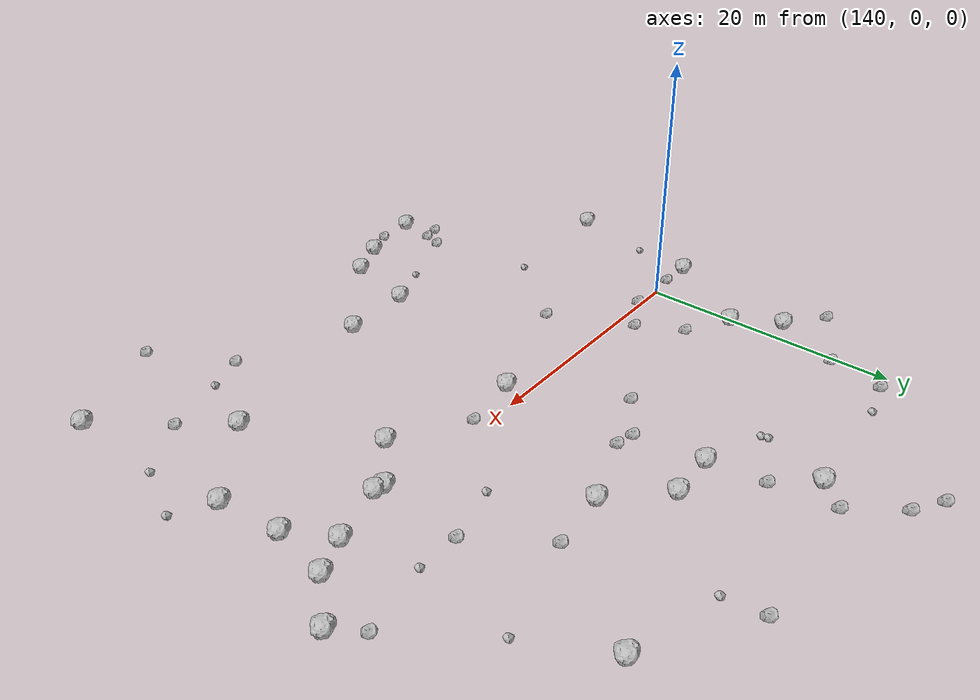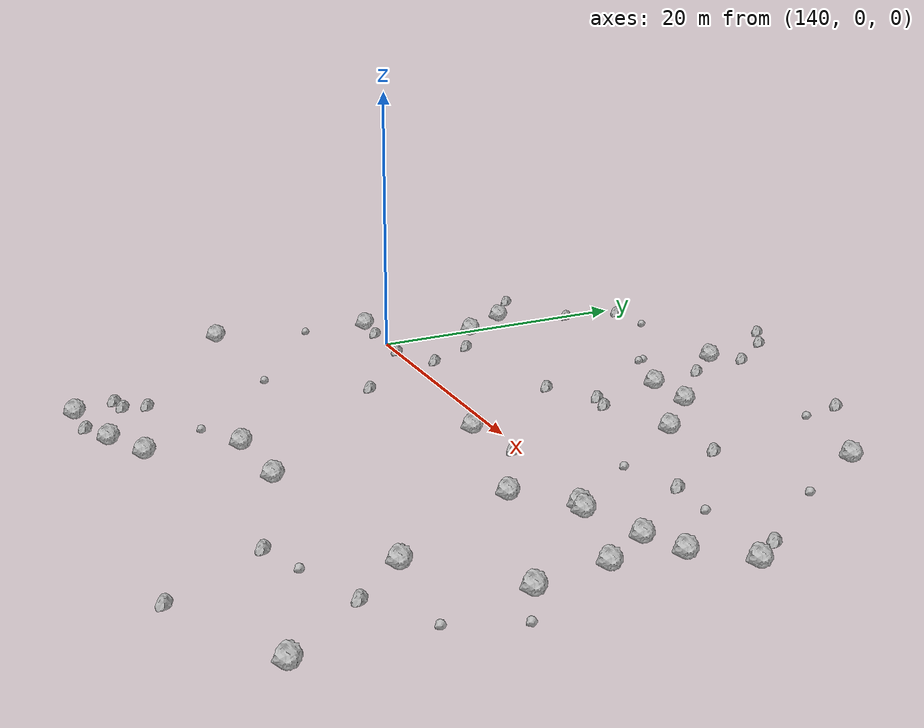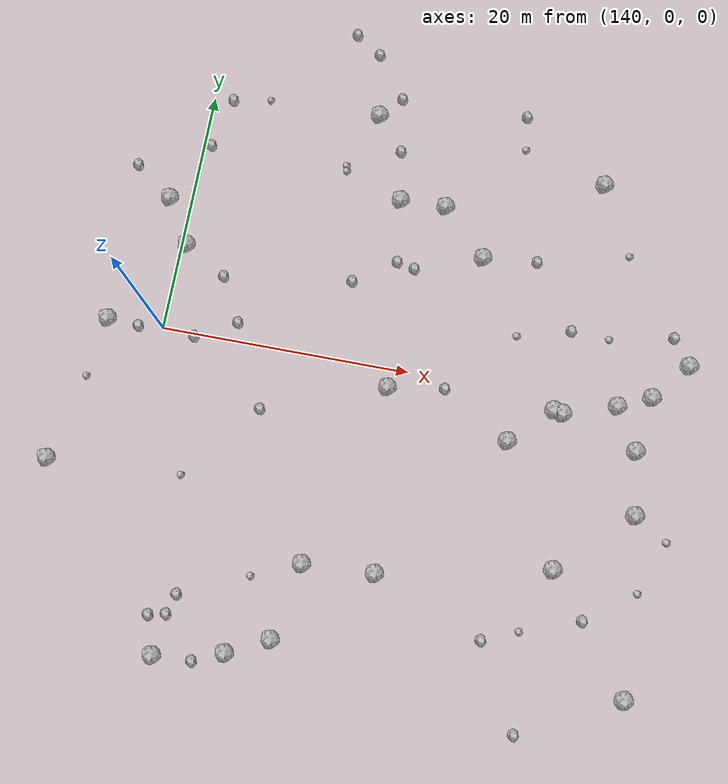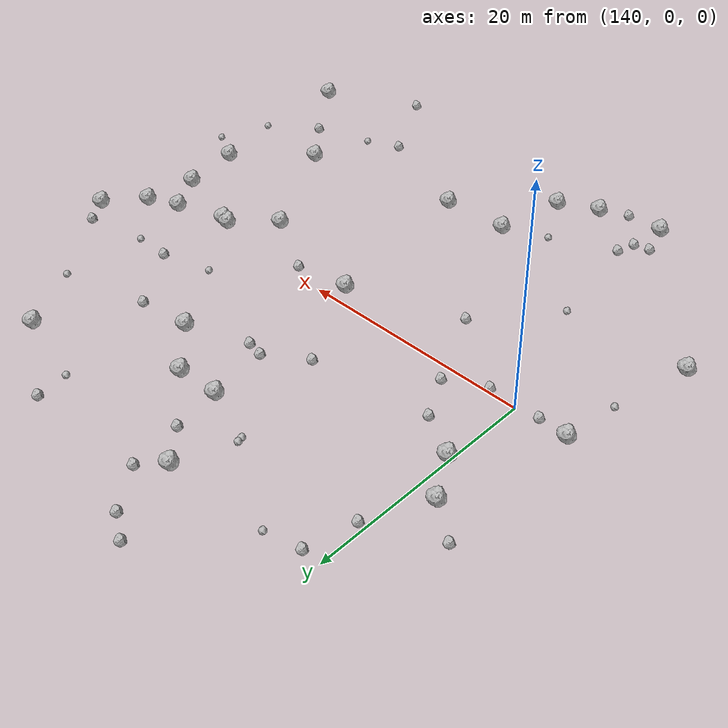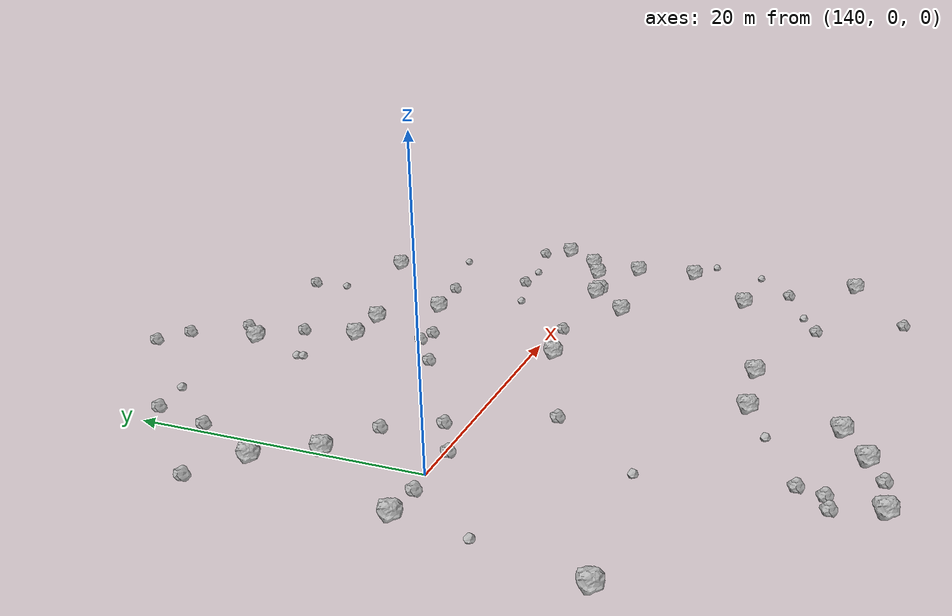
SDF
<sdf version="1.6">
 <world name="default">
  <include><uri>model://sun</uri></include>
  <model name="rock1_4_2">
   <include><uri>model://rock1</uri><pose>179.37816351507627 1.466115987501734 0.5 0 0 0</pose></include>
  </model>
  <model name="rock1_4_3">
   <include><uri>model://rock1</uri><pose>160.58152970934538 14.098430244095361 0.5 0 0 0</pose></include>
  </model>
  <model name="rock1_4_4">
   <include><uri>model://rock1</uri><pose>153.35358955103715 -22.394350522922633 0.5 0 0 0</pose></include>
  </model>
  <model name="rock1_4_5">
   <include><uri>model://rock1</uri><pose>171.8794759038649 -0.9224137711694134 0.5 0 0 0</pose></include>
  </model>
  <model name="rock1_4_6">
   <include><uri>model://rock1</uri><pose>140.4243504457665 7.079330783435097 0.5 0 0 0</pose></include>
  </model>
  <model name="rock1_4_7">
   <include><uri>model://rock1</uri><pose>172.60088688579467 -1.0722506418218316 0.5 0 0 0</pose></include>
  </model>
  <model name="rock1_4_8">
   <include><uri>model://rock1</uri><pose>164.30971926824358 10.378039802002988 0.5 0 0 0</pose></include>
  </model>
  <model name="rock1_4_9">
   <include><uri>model://rock1</uri><pose>135.51616082345473 -0.1012616502112138 0.5 0 0 0</pose></include>
  </model>
  <model name="rock1_4_10">
   <include><uri>model://rock1</uri><pose>153.83681813503628 20.92597373019599 0.5 0 0 0</pose></include>
  </model>
  <model name="rock1_4_11">
   <include><uri>model://rock1</uri><pose>168.6508892107027 -4.0226996368251235 0.5 0 0 0</pose></include>
  </model>
  <model name="rock1_4_12">
   <include><uri>model://rock1</uri><pose>176.77795737625638 0.30525480426799234 0.5 0 0 0</pose></include>
  </model>
  <model name="rock1_4_13">
   <include><uri>model://rock1</uri><pose>178.71685652431614 -2.9955552754579777 0.5 0 0 0</pose></include>
  </model>
  <model name="rock1_4_14">
   <include><uri>model://rock1</uri><pose>160.2633435688973 -16.054037047116786 0.5 0 0 0</pose></include>
  </model>
  <model name="rock1_4_15">
   <include><uri>model://rock1</uri><pose>133.33062036457105 -11.962382334126886 0.5 0 0 0</pose></include>
  </model>
  <model name="rock1_4_16">
   <include><uri>model://rock1</uri><pose>154.5920035993372 -16.355337855194424 0.5 0 0 0</pose></include>
  </model>
  <model name="rock1_4_17">
   <include><uri>model://rock1</uri><pose>173.72287729194053 -13.269455644142901 0.5 0 0 0</pose></include>
  </model>
  <model name="rock1_4_18">
   <include><uri>model://rock1</uri><pose>138.23782299025507 10.725194301823215 0.5 0 0 0</pose></include>
  </model>
  <model name="rock1_4_19">
   <include><uri>model://rock1</uri><pose>173.10245029490412 18.316159863033242 0.5 0 0 0</pose></include>
  </model>
  <model name="rock1_4_20">
   <include><uri>model://rock1</uri><pose>158.60573978834105 -1.5365672321291228 0.5 0 0 0</pose></include>
  </model>
  <model name="rock1_4_21">
   <include><uri>model://rock1</uri><pose>150.13184095997863 -24.013876974100228 0.5 0 0 0</pose></include>
  </model>
  <model name="rock1_4_22">
   <include><uri>model://rock1</uri><pose>144.71034164013943 -25.18097720848361 0.5 0 0 0</pose></include>
  </model>
  <model name="rock1_4_23">
   <include><uri>model://rock1</uri><pose>180.480954142228 -21.91430242408269 0.5 0 0 0</pose></include>
  </model>
  <model name="rock1_4_24">
   <include><uri>model://rock1</uri><pose>156.86210737131404 13.990693045455288 0.5 0 0 0</pose></include>
  </model>
  <model name="rock1_4_25">
   <include><uri>model://rock1</uri><pose>181.94386876794655 4.536222934205597 0.5 0 0 0</pose></include>
  </model>
  <model name="rock1_4_26">
   <include><uri>model://rock1</uri><pose>179.3611712183856 -8.003561055427241 0.5 0 0 0</pose></include>
  </model>
  <model name="rock2_4_0">
   <include><uri>model://rock2</uri><pose>145.0791963898362 -21.981629789377877 0.3 0 0 0</pose></include>
  </model>
  <model name="rock2_4_1">
   <include><uri>model://rock2</uri><pose>176.53078802269772 -16.705020681937288 0.3 0 0 0</pose></include>
  </model>
  <model name="rock2_4_2">
   <include><uri>model://rock2</uri><pose>141.5987830025462 20.067506304328724 0.3 0 0 0</pose></include>
  </model>
  <model name="rock2_4_3">
   <include><uri>model://rock2</uri><pose>157.51141908794807 8.78964333317429 0.3 0 0 0</pose></include>
  </model>
  <model name="rock2_4_4">
   <include><uri>model://rock2</uri><pose>155.4482671849091 22.75158564228539 0.3 0 0 0</pose></include>
  </model>
  <model name="rock2_4_5">
   <include><uri>model://rock2</uri><pose>154.21143254590615 6.531636603020601 0.3 0 0 0</pose></include>
  </model>
  <model name="rock2_4_6">
   <include><uri>model://rock2</uri><pose>168.69152499971455 10.847033085827917 0.3 0 0 0</pose></include>
  </model>
  <model name="rock2_4_7">
   <include><uri>model://rock2</uri><pose>148.9619401922912 -5.073125404602383 0.3 0 0 0</pose></include>
  </model>
  <model name="rock2_4_8">
   <include><uri>model://rock2</uri><pose>158.97363677768078 8.47068638871201 0.3 0 0 0</pose></include>
  </model>
  <model name="rock2_4_9">
   <include><uri>model://rock2</uri><pose>138.01402342263268 -0.22714334174213135 0.3 0 0 0</pose></include>
  </model>
  <model name="rock2_4_10">
   <include><uri>model://rock2</uri><pose>156.14240951394245 18.16434991378224 0.3 0 0 0</pose></include>
  </model>
  <model name="rock2_4_11">
   <include><uri>model://rock2</uri><pose>172.67660348975923 -25.935924977060715 0.3 0 0 0</pose></include>
  </model>
  <model name="rock2_4_12">
   <include><uri>model://rock2</uri><pose>152.8726339188321 26.300652536558147 0.3 0 0 0</pose></include>
  </model>
  <model name="rock2_4_13">
   <include><uri>model://rock2</uri><pose>169.1269539209236 -19.525370950879328 0.3 0 0 0</pose></include>
  </model>
  <model name="rock2_4_14">
   <include><uri>model://rock2</uri><pose>145.5524420852626 -20.37211962745779 0.3 0 0 0</pose></include>
  </model>
  <model name="rock2_4_15">
   <include><uri>model://rock2</uri><pose>143.9157884651672 5.031228403906795 0.3 0 0 0</pose></include>
  </model>
  <model name="rock2_4_16">
   <include><uri>model://rock2</uri><pose>147.7398074912499 -25.06358776289907 0.3 0 0 0</pose></include>
  </model>
  <model name="rock2_4_17">
   <include><uri>model://rock2</uri><pose>143.73534069215125 -22.283830455568214 0.3 0 0 0</pose></include>
  </model>
  <model name="rock2_4_18">
   <include><uri>model://rock2</uri><pose>165.9311995134854 23.069992876904507 0.3 0 0 0</pose></include>
  </model>
  <model name="rock2_4_19">
   <include><uri>model://rock2</uri><pose>180.47758650377875 6.624388593675221 0.3 0 0 0</pose></include>
  </model>
  <model name="rock2_4_20">
   <include><uri>model://rock2</uri><pose>145.82436067487924 1.4756971205700538 0.3 0 0 0</pose></include>
  </model>
  <model name="rock2_4_21">
   <include><uri>model://rock2</uri><pose>172.27606600426094 5.687214864666657 0.3 0 0 0</pose></include>
  </model>
  <model name="rock2_4_22">
   <include><uri>model://rock2</uri><pose>150.7072363936537 27.73432951082456 0.3 0 0 0</pose></include>
  </model>
  <model name="rock2_4_23">
   <include><uri>model://rock2</uri><pose>163.0960690911804 -0.8117480426754717 0.3 0 0 0</pose></include>
  </model>
  <model name="rock2_4_24">
   <include><uri>model://rock2</uri><pose>135.03586471414863 13.091035840711442 0.3 0 0 0</pose></include>
  </model>
  <model name="rock2_4_25">
   <include><uri>model://rock2</uri><pose>140.61434436038397 15.836348315667856 0.3 0 0 0</pose></include>
  </model>
  <model name="rock2_4_26">
   <include><uri>model://rock2</uri><pose>142.58579609872726 -0.26446442745156773 0.3 0 0 0</pose></include>
  </model>
  <model name="rock3_4_0">
   <include><uri>model://rock3</uri><pose>175.36255270164855 5.5240147647016755 0.2 0 0 0</pose></include>
  </model>
  <model name="rock3_4_1">
   <include><uri>model://rock3</uri><pose>180.39691015493662 -13.910456471751516 0.2 0 0 0</pose></include>
  </model>
  <model name="rock3_4_2">
   <include><uri>model://rock3</uri><pose>168.03466118445408 4.469905125710106 0.2 0 0 0</pose></include>
  </model>
  <model name="rock3_4_3">
   <include><uri>model://rock3</uri><pose>152.02865891067594 15.6803689044892 0.2 0 0 0</pose></include>
  </model>
  <model name="rock3_4_4">
   <include><uri>model://rock3</uri><pose>134.8130627303532 -5.009348750124932 0.2 0 0 0</pose></include>
  </model>
  <model name="rock3_4_5">
   <include><uri>model://rock3</uri><pose>182.06750531756262 -9.638659361462661 0.2 0 0 0</pose></include>
  </model>
  <model name="rock3_4_6">
   <include><uri>model://rock3</uri><pose>151.91747703796636 16.139075241742354 0.2 0 0 0</pose></include>
  </model>
  <model name="rock3_4_7">
   <include><uri>model://rock3</uri><pose>150.8610615432254 -18.02148777289628 0.2 0 0 0</pose></include>
  </model>
  <model name="rock3_4_8">
   <include><uri>model://rock3</uri><pose>144.6479180508601 20.63015368443368 0.2 0 0 0</pose></include>
  </model>
  <model name="rock3_4_9">
   <include><uri>model://rock3</uri><pose>175.98997446720563 12.677886133210414 0.2 0 0 0</pose></include>
  </model>
  <model name="rock3_4_10">
   <include><uri>model://rock3</uri><pose>166.2774987607502 20.193153643033583 0.2 0 0 0</pose></include>
  </model>
  <model name="rock3_4_11">
   <include><uri>model://rock3</uri><pose>143.8995536275585 -11.369002455104798 0.2 0 0 0</pose></include>
  </model>
  <model name="rock3_4_12">
   <include><uri>model://rock3</uri><pose>171.88919639813582 -18.38858826593006 0.2 0 0 0</pose></include>
  </model>
 </world>
</sdf>
